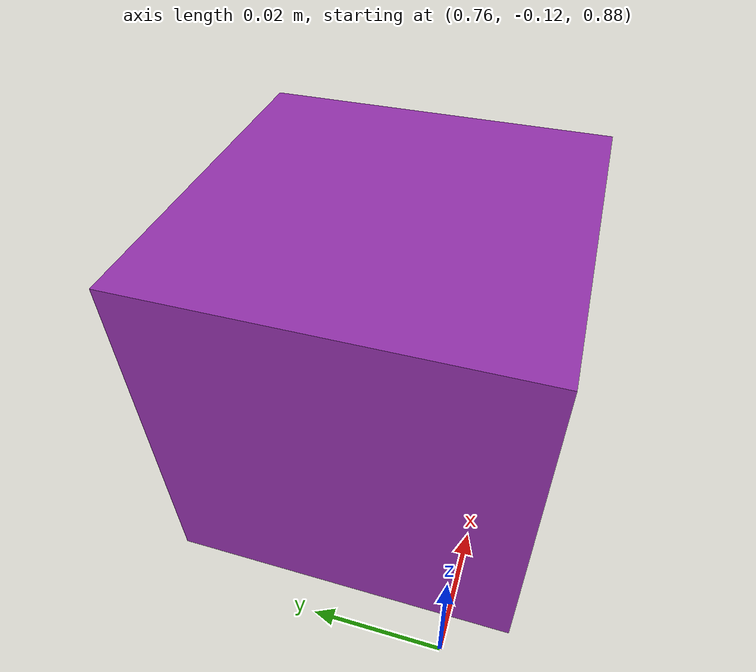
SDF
<?xml version="1.0" ?>
<sdf version="1.4">

  <world name="default">

    <include>
      <uri>model://ground_plane</uri>
    </include>

    <include>
      <uri>model://sun</uri>
    </include>

    <include>
      <uri>model://hover_cube</uri>
      <pose>0.8 -0.1 0.9 0 0 0</pose>
    </include>

  </world>

</sdf>

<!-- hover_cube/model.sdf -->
<sdf version='1.4'>
  <model name="hover_cube">
    <static>0</static>
    <link name='link'>
      <inertial>
        <mass>0.25</mass>
        <inertia>
          <ixx>0.001</ixx>
          <ixy>0.000000</ixy>
          <ixz>0.000000</ixz>
          <iyy>0.001</iyy>
          <iyz>0.000000</iyz>
          <izz>0.001</izz>
        </inertia>
      </inertial>
      <collision name='collision'>
        <geometry>
          <box>
            <size>0.060 0.060 0.060</size>
          </box>
        </geometry>
        <surface>
          <friction>
            <ode>
              <mu>30.0</mu>
              <mu2>30.0</mu2>
            </ode>
          </friction>
          <contact>
            <ode>
              <kp>1000000.0</kp>
              <kd>100.0</kd>
              <max_vel>1.0</max_vel>
              <min_depth>0.002</min_depth>
            </ode>
          </contact>
        </surface>
      </collision>
      <visual name='visual'>
        <geometry>
          <box>
            <size>0.060 0.060 0.060</size>
          </box>
        </geometry>
        <material>
          <script>
            <uri>file://media/materials/scripts/gazebo.material</uri>
            <name>Gazebo/Purple</name>
          </script>
        </material>
      </visual>
      <velocity_decay>
        <linear>0.000000</linear>
        <angular>0.000000</angular>
      </velocity_decay>
      <self_collide>0</self_collide>
      <kinematic>0</kinematic>
      <gravity>1</gravity>
    </link>

    <plugin filename="libmodel_push.so" name="model_push" />

  </model>
</sdf>
